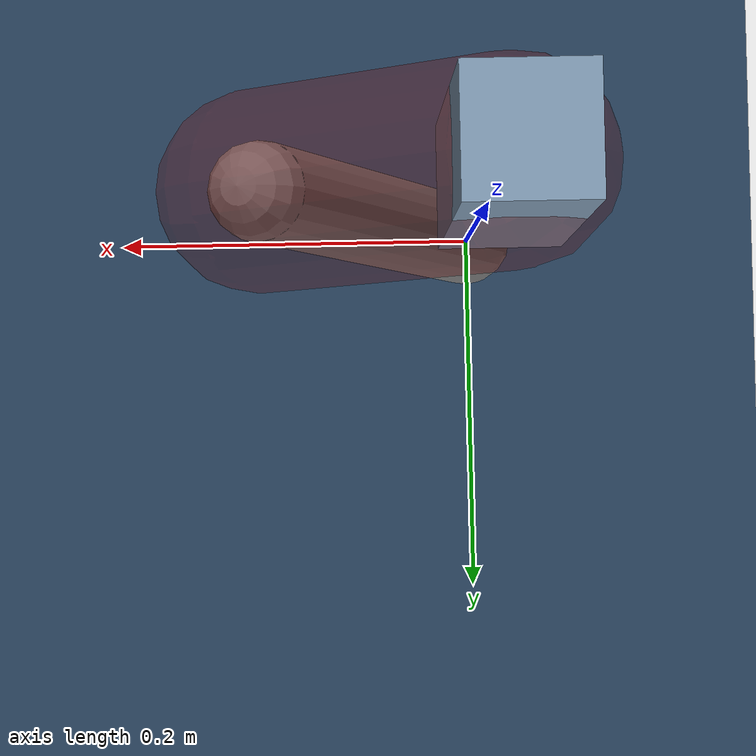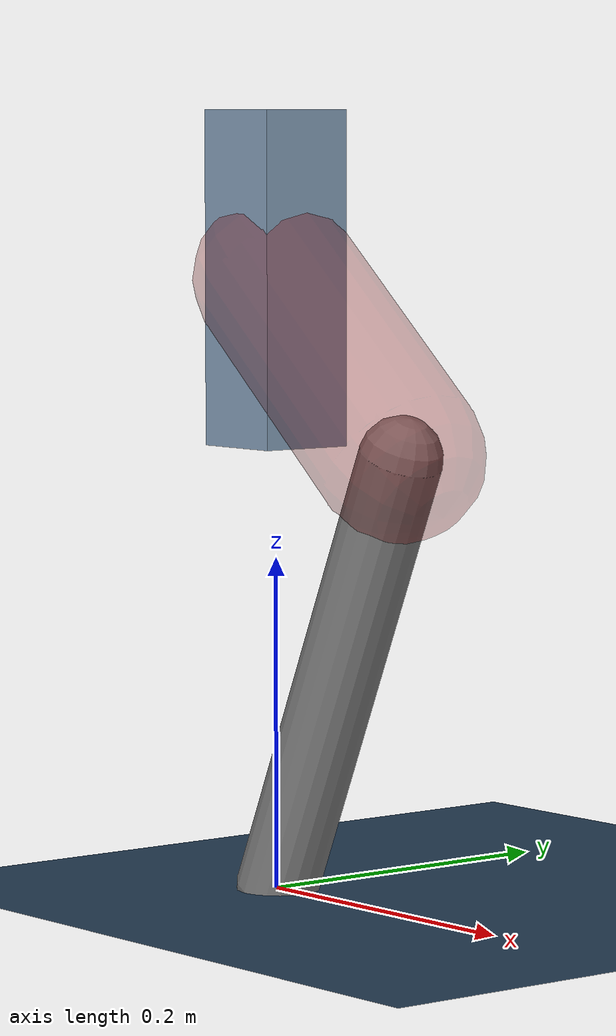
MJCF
<mujoco model="Hopper2D">
	<compiler inertiafromgeom="true" angle="radian" />
	<option timestep="0.001" integrator="implicit" cone="elliptic" solver="Newton" tolerance="1e-10" />

	<default>
		<geom contype="1" conaffinity="1" condim="3" friction="2 0.005 0.0001" solref="0.005 1" />
		<joint limited="true" damping="0.1" />
	</default>

	<asset>
		<texture name="skybox" type="skybox" builtin="gradient" rgb1=".4 .6 .8" rgb2="0 0 0" width="800" height="800" />
		<texture name="grid" type="2d" builtin="checker" rgb1=".1 .2 .3" rgb2=".2 .3 .4" width="300" height="300" mark="edge" markrgb=".2 .3 .4" />
		<material name="ground" texture="grid" texrepeat="1 1" texuniform="true" reflectance="0.1" />
		<material name="leg" rgba="0.5 0.6 0.7 1" />
	</asset>

	<worldbody>

		<geom name="floor" type="plane" size="5 5 0.25" material="ground" />

		<light directional="false" diffuse="0.8 0.8 0.8" specular="0.3 0.3 0.3" pos="0 0 2" dir="0 0 -1" />
		<light mode="targetbodycom" target="base" directional="false" diffuse="0.8 0.8 0.8" specular="0.3 0.3 0.3" pos="0 0 2" dir="0 0 -1" />

		<camera name="fixed" pos="0 -2 1" xyaxes="1 0 0 0 0 1" />
		<camera name="tracking" mode="trackcom" pos="0 -3 1" />

		<body name="root" pos="0 0 0.3676115402751549">
			<joint name="slide_x" type="slide" axis="1 0 0" range="-100 100" />
			<joint name="slide_z" type="slide" axis="0 0 1" range="0 10" />

			<body name="base" pos="0 0 0">
				<geom name="torso" type="box" size="0.03 0.03 0.1" mass="2.544" material="leg" />

				<body name="link1" pos="0 0 0" euler="0 0.7098256995115663 0">
					<joint type="hinge" axis="0 -1 0" pos="0 0 0" name="hinge1" limited="true" range="-3.14 3.14" stiffness="0" damping="0.1" />
					<geom name="thigh" type="capsule" fromto="0 0 0 0.15416191238583132 0 0" size="0.05" rgba="0.5 0 0 0.3" mass="0.6183885897259952" />

					<body name="link2" pos="0.15416191238583132 0 0" euler="0 1.2735461324684383 0">
						<joint type="hinge" axis="0 -1 0" pos="0 0 0" name="hinge2" limited="true" range="-3.14 3.14" stiffness="0" damping="0.1" />
						<geom name="shank" type="capsule" fromto="0 0 0 0.291612876310942 0 0" size="0.025" mass="0.4765903010487536" />

					</body>
				</body>
			</body>
		</body>
	</worldbody>

	<actuator>
		<motor name="torque1" joint="hinge1" ctrlrange="-97.45101598554233 97.45101598554233" ctrllimited="true" gear="1" />
		<motor name="torque2" joint="hinge2" ctrlrange="-32.73111503919581 32.73111503919581" ctrllimited="true" gear="1" />
	</actuator>
</mujoco>
